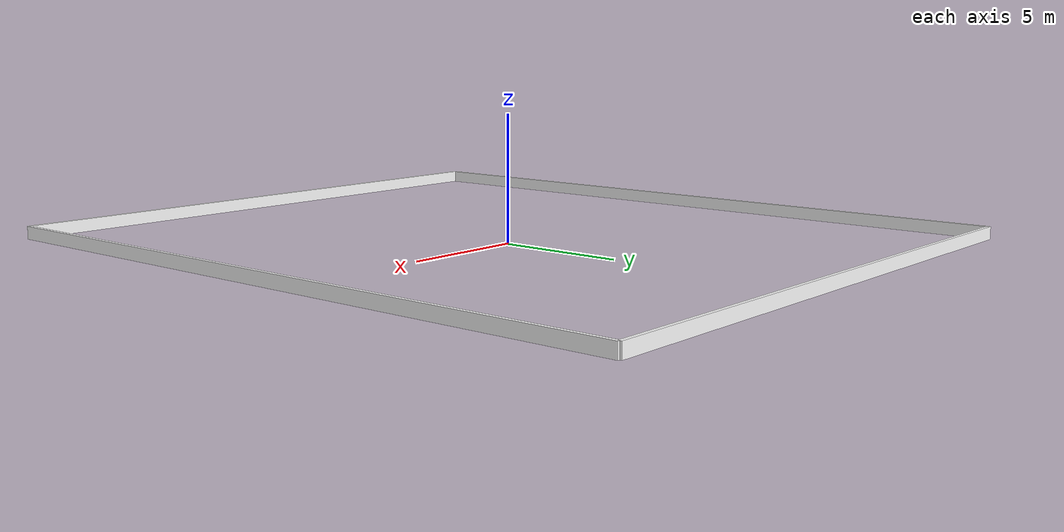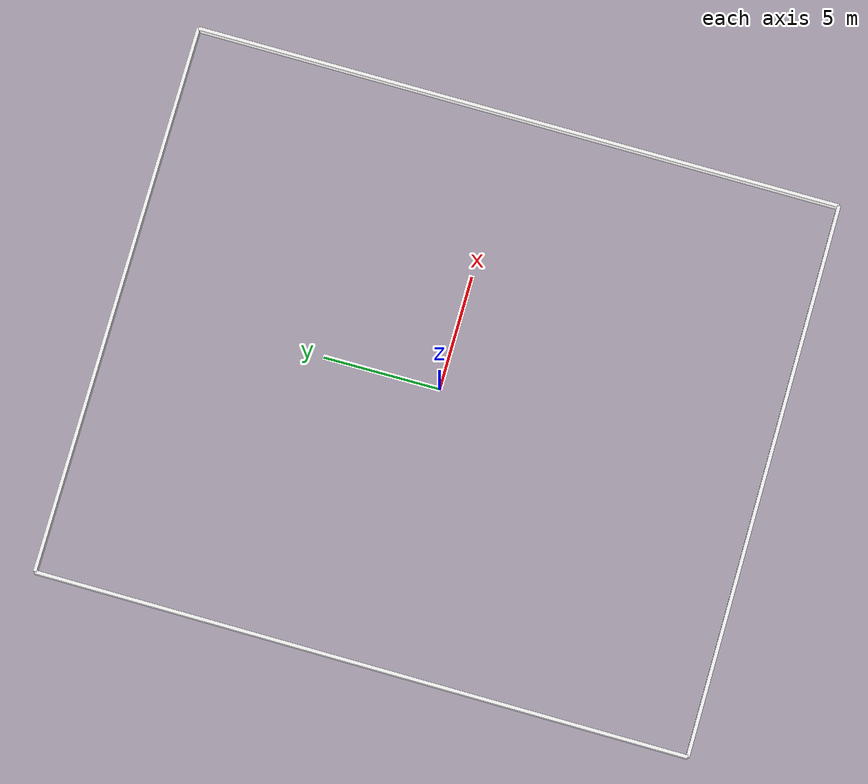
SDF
<?xml version='1.0'?>
<sdf version='1.8'>
  <model name='ARC_Zone'>
    <pose>0 0 0 0 0 0</pose>
    <static>true</static> <!-- Set false to allow physics and falling -->

    <!-- Wall East -->
    <link name='Wall_E'>
      <pose>12 0 0.45 0 0 1.5708</pose> <!-- 12m east, rotated 90 deg -->
      <collision name='Wall_E_Collision'>
        <geometry>
          <box>
            <size>28 0.15 0.5</size>
          </box>
        </geometry>
      </collision>
      <visual name='Wall_E_Visual'>
        <pose>0 0 0 0 0 0</pose>
        <geometry>
          <box>
            <size>28 0.15 0.5</size>
          </box>
        </geometry>
        <material>
          <pbr>
            <metal>
              <albedo_map>textures/arc_logo.png</albedo_map>
            </metal>
          </pbr>
          <ambient>1 1 1 1</ambient>
          <diffuse>1 1 1 1</diffuse>
          <specular>0.2 0.2 0.2 1</specular>
          <emissive>0 0 0 1</emissive>
        </material>
      </visual>
    </link>

    <!-- Wall North -->
    <link name='Wall_N'>
      <pose>0 14 0.45 0 0 0</pose> <!-- 14m north -->
      <collision name='Wall_N_Collision'>
        <geometry>
          <box>
            <size>24 0.15 0.5</size>
          </box>
        </geometry>
      </collision>
      <visual name='Wall_N_Visual'>
        <pose>0 0 0 0 0 0</pose>
        <geometry>
          <box>
            <size>24 0.15 0.5</size>
          </box>
        </geometry>
        <material>
          <pbr>
            <metal>
              <albedo_map>textures/arc_logo.png</albedo_map>
            </metal>
          </pbr>
          <ambient>1 1 1 1</ambient>
          <diffuse>1 1 1 1</diffuse>
          <specular>0.2 0.2 0.2 1</specular>
          <emissive>0 0 0 1</emissive>
        </material>
      </visual>
    </link>

    <!-- Wall West -->
    <link name='Wall_W'>
      <pose>-12 0 0.45 0 0 1.5708</pose> <!-- 12m west, rotated 90 deg -->
      <collision name='Wall_W_Collision'>
        <geometry>
          <box>
            <size>28 0.15 0.5</size>
          </box>
        </geometry>
      </collision>
      <visual name='Wall_W_Visual'>
        <pose>0 0 0 0 0 0</pose>
        <geometry>
          <box>
            <size>28 0.15 0.5</size>
          </box>
        </geometry>
        <material>
          <pbr>
            <metal>
              <albedo_map>textures/arc_logo.png</albedo_map>
            </metal>
          </pbr>
          <ambient>1 1 1 1</ambient>
          <diffuse>1 1 1 1</diffuse>
          <specular>0.2 0.2 0.2 1</specular>
          <emissive>0 0 0 1</emissive>
        </material>
      </visual>
    </link>

    <!-- Wall South -->
    <link name='Wall_S'>
      <pose>0 -14 0.45 0 0 0</pose> <!-- 14m south -->
      <collision name='Wall_S_Collision'>
        <geometry>
          <box>
            <size>24 0.15 0.5</size>
          </box>
        </geometry>
      </collision>
      <visual name='Wall_S_Visual'>
        <pose>0 0 0 0 0 0</pose>
        <geometry>
          <box>
            <size>24 0.15 0.5</size>
          </box>
        </geometry>
        <material>
          <pbr>
            <metal>
              <albedo_map>textures/arc_logo.png</albedo_map>
            </metal>
          </pbr>
          <ambient>1 1 1 1</ambient>
          <diffuse>1 1 1 1</diffuse>
          <specular>0.2 0.2 0.2 1</specular>
          <emissive>0 0 0 1</emissive>
        </material>
      </visual>
    </link>

    <!-- Fixed joints connecting walls (remove the last joint to break the loop) -->
    <joint name="joint_wall_e_n" type="fixed">
      <parent>Wall_E</parent>
      <child>Wall_N</child>
    </joint>

    <joint name="joint_wall_n_w" type="fixed">
      <parent>Wall_N</parent>
      <child>Wall_W</child>
    </joint>

    <joint name="joint_wall_w_s" type="fixed">
      <parent>Wall_W</parent>
      <child>Wall_S</child>
    </joint>

  </model>
</sdf>
